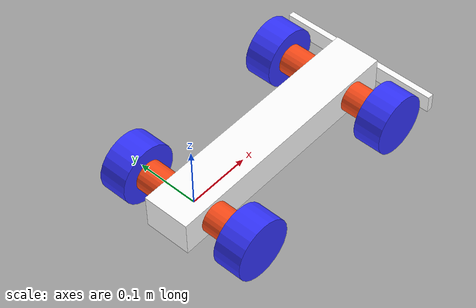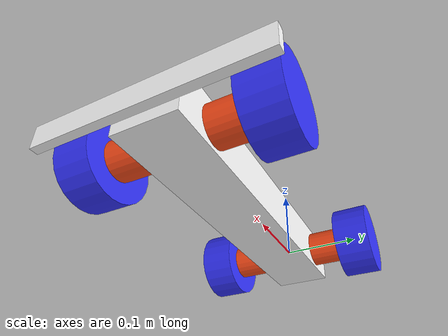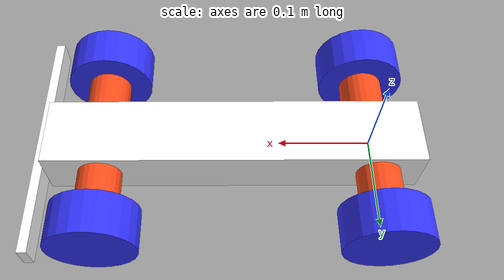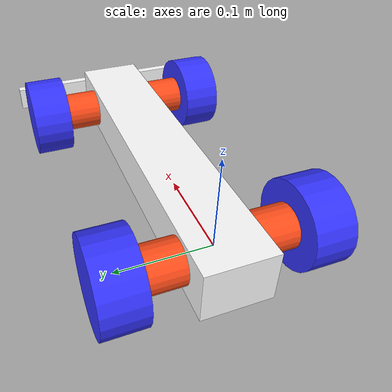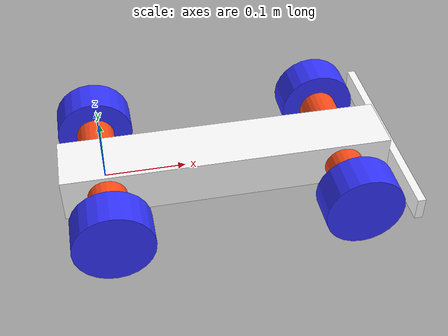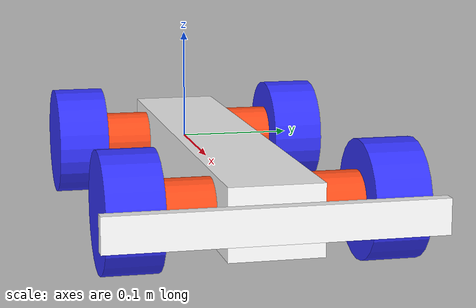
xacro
<?xml version="1.0"?>
<robot xmlns:xacro="http://www.ros.org/wiki/xacro">
    <xacro:include filename="inertial_macros.xacro" />

    <material name="white">
        <color rgba="1 1 1 1" />
    </material>

    <material name="orange">
        <color rgba="1 0.3 0.1 1"/>
    </material>

    <material name="blue">
        <color rgba="0.2 0.2 1 1"/>
    </material>

    <material name="black">
        <color rgba="0 0 0 1"/>
    </material>

    <material name="red">
        <color rgba="1 0 0 1"/>
    </material>

<!-- BASE LINK-->
    <link name="base_link">

    </link>

<!-- CAHSSIS LINK-->
    <joint name="chassis_joint" type = "fixed">
        <parent link ="base_link" />
        <child link="chassis"/>
        <origin xyz="0.15 0 0"/>
    </joint>

    <link name="chassis">
        <visual>
            <geometry>
                <box size="0.408 0.075 0.057"/>
            </geometry>
            <material name="white"/>
        </visual>
        <collision>
            <origin xyz="0 0 0" rpy="0 0 0"/>
            <geometry>
                <box size="0.408 0.075 0.057"/>
            </geometry>
        </collision>
        <xacro:inertial_box mass="1.113" x="0.408" y="0.075" z="0.057">
            <origiin xyz="0 0 0" rpy="0 0 0"/>
        </xacro:inertial_box>
    </link>

    <gazebo reference="chassis">
        <material>Gazebo/White</material>
    </gazebo>

<!-- FRONT BUMPER-->

    <joint name="bumper_joint" type = "fixed">
        <parent link ="chassis" />
        <child link="front_bumper"/>
        <origin xyz="0.209 0 0"/>
    </joint>

    <link name="front_bumper">
        <visual>
            <geometry>
                <box size="0.01 0.265 0.0285"/>
            </geometry>
            <material name="white"/>
        </visual>
        <collision>
            <geometry>
                <box size="0.01 0.265 0.057"/>
            </geometry>
        </collision>
        <xacro:inertial_box mass="0.003" x="0.01" y="0.256" z="0.057">
            <origiin xyz="0 0 0" rpy="0 0 0"/>
        </xacro:inertial_box>
    </link>

<!--REAR LEFT WHEEL AXEL -->
    <joint name="rear_left_axel_joint" type="fixed">
        <parent link="chassis"/>
        <child link="rear_left_axel_link"/>
        <origin xyz="-0.156 0.059 0" rpy="-${pi/2} 0 0 "/>
    </joint>

    <link name="rear_left_axel_link">
        <visual>
            <geometry>
                <cylinder radius="0.024" length="0.043"/>
            </geometry>
            <material name="orange"/>
        </visual>
         <collision>
            <geometry>
                <cylinder radius="0.024" length="0.043"/>
            </geometry>
        </collision>
        <xacro:inertial_cylinder mass="0.005" radius="0.024" length="0.05">
            <origiin xyz="0 0 0" rpy="0 0 0"/>
        </xacro:inertial_cylinder>
    </link>
    <gazebo reference="rear_left_axel_link">
        <material>Gazebo/Orange</material>
    </gazebo>

<!-- REAR RIGHT WHEEL AXEL -->

    <joint name="rear_right_axel_joint" type="fixed">
        <parent link="chassis"/>
        <child link="rear_right_axel_link"/>
        <origin xyz="-0.15 -0.059 0" rpy="${pi/2} 0 0 "/>
    </joint>

    <link name="rear_right_axel_link">
        <visual>
            <geometry>
                <cylinder radius="0.024" length="0.043"/>
            </geometry>
            <material name="orange"/>
        </visual>
         <collision>
            <geometry>
                <cylinder radius="0.024" length="0.043"/>
            </geometry>
        </collision>
        <xacro:inertial_cylinder mass="0.005" radius="0.024" length="0.05">
            <origiin xyz="0 0 0" rpy="0 0 0"/>
        </xacro:inertial_cylinder>
    </link>

    <gazebo reference="rear_right_axel_link">
        <material>Gazebo/Orange</material>
    </gazebo>
<!-- FRONT LEFT WHEEL AXEL -->

    <joint name="front_left_axel_joint" type="fixed">
        <parent link="chassis"/>
        <child link="front_left_axel_link"/>
        <origin xyz="0.145 0.059 0" rpy="-${pi/2} 0 0"/>
    </joint>

    <link name="front_left_axel_link">
        <visual>
            <geometry>
                <cylinder radius="0.024" length="0.043"/>
            </geometry>
            <material name="orange"/>
        </visual>
         <collision>
            <geometry>
                <cylinder radius="0.024" length="0.043"/>
            </geometry>
        </collision>
        <xacro:inertial_cylinder mass="0.005" radius="0.024" length="0.05">
            <origiin xyz="0 0 0" rpy="0 0 0"/>
        </xacro:inertial_cylinder>
    </link>

    <gazebo reference="front_left_axel_link">
        <material>Gazebo/Orange</material>
    </gazebo>

<!-- FRONT RIGHT WHEEL AXEL -->
    <joint name="front_right_axel_joint" type="fixed">
        <parent link="chassis"/>
        <child link="front_right_axel_link"/>
        <origin xyz="0.145 -0.059 0" rpy="${pi/2} 0 0"/>
    </joint>

    <link name="front_right_axel_link">
        <visual>
            <geometry>
                <cylinder radius="0.024" length="0.043"/>
            </geometry>
            <material name="orange"/>
        </visual>
         <collision>
            <geometry>
                <cylinder radius="0.024" length="0.043"/>
            </geometry>
        </collision>
        <xacro:inertial_cylinder mass="0.005" radius="0.024" length="0.05">
            <origiin xyz="0 0 0" rpy="0 0 0"/>
        </xacro:inertial_cylinder>
    </link>

    <gazebo reference="front_right_axel_link">
        <material>Gazebo/Orange</material>
    </gazebo>

<!-- FRONT LEFT WHEEL -->

    <joint name="front_left_wheel_joint" type="continuous">
        <parent link="front_left_axel_link"/>
        <child link="front_left_wheel"/>
        <origin xyz="0 0 0.044" rpy="0 0 0"/>
        <axis xyz="0 0 1"/>
    </joint>

    <link name="front_left_wheel">
        <visual>
            <geometry>
                <cylinder radius="0.0483" length="0.045"/>
            </geometry>
            <material name="blue"/>
        </visual>
         <collision>
            <geometry>
                <cylinder radius="0.0483" length="0.045"/>
            </geometry>
        </collision>
        <xacro:inertial_cylinder mass="0.003" radius="0.0483" length="0.045">
            <origiin xyz="0 0 0" rpy="0 0 0"/>
        </xacro:inertial_cylinder>
    </link>

    <gazebo reference="front_left_wheel">
        <material>Gazebo/Blue</material>
        <mu1 value="0.001"/>
        <mu2 value="0.001"/>
    </gazebo>

<!-- FRONT RIGHT WHEEL -->

    <joint name="front_right_wheel_joint" type="continuous">
        <parent link="front_right_axel_link"/>
        <child link="front_right_wheel"/>
        <origin xyz="0 0 0.044" rpy="0 0 0"/>
        <axis xyz="0 0 -1"/>
    </joint>

    <link name="front_right_wheel">
        <visual>
            <geometry>
                <cylinder radius="0.0483" length="0.045"/>
            </geometry>
            <material name="blue"/>
        </visual>
         <collision>
            <geometry>
                <cylinder radius="0.0483" length="0.045"/>
            </geometry>
        </collision>
        <xacro:inertial_cylinder mass="0.003" radius="0.0483" length="0.045">
            <origiin xyz="0 0 0" rpy="0 0 0"/>
        </xacro:inertial_cylinder>
    </link>

    <gazebo reference="front_right_wheel">
        <material>Gazebo/Blue</material>
        <mu1 value="0.001"/>
        <mu2 value="0.001"/>
    </gazebo>

<!-- BACK LEFT WHEEL -->

    <joint name="rear_left_wheel_joint" type="continuous">
        <parent link="rear_left_axel_link"/>
        <child link="rear_left_wheel"/>
        <origin xyz="0 0 0.044" rpy="0 0 0"/>
        <axis xyz="0 0 1"/>
    </joint>

    <link name="rear_left_wheel">
        <visual>
            <geometry>
                <cylinder radius="0.0483" length="0.045"/>
            </geometry>
            <material name="blue"/>
        </visual>
         <collision>
            <geometry>
                <cylinder radius="0.0483" length="0.045"/>
            </geometry>
        </collision>
        <xacro:inertial_cylinder mass="0.003" radius="0.0483" length="0.045">
            <origiin xyz="0 0 0" rpy="0 0 0"/>
        </xacro:inertial_cylinder>
    </link>

    <gazebo reference="rear_left_wheel">
        <material>Gazebo/Blue</material>
    </gazebo>

<!-- BACK RIGHT WHEEL -->
    <joint name="rear_right_wheel_joint" type="continuous">
        <parent link="rear_right_axel_link"/>
        <child link="rear_right_wheel"/>
        <origin xyz="0 0 0.044" rpy="0 0 0"/>
        <axis xyz="0 0 -1"/>
    </joint>

    <link name="rear_right_wheel">
        <visual>
            <geometry>
                <cylinder radius="0.0483" length="0.045"/>
            </geometry>
            <material name="blue"/>
        </visual>
         <collision>
            <geometry>
                <cylinder radius="0.0483" length="0.045"/>
            </geometry>
        </collision>
        <xacro:inertial_cylinder mass="0.003" radius="0.0483" length="0.045">
            <origiin xyz="0 0 0" rpy="0 0 0"/>
        </xacro:inertial_cylinder>
    </link>

    <gazebo reference="rear_right_wheel">
        <material>Gazebo/Blue</material>
    </gazebo>
</robot>
